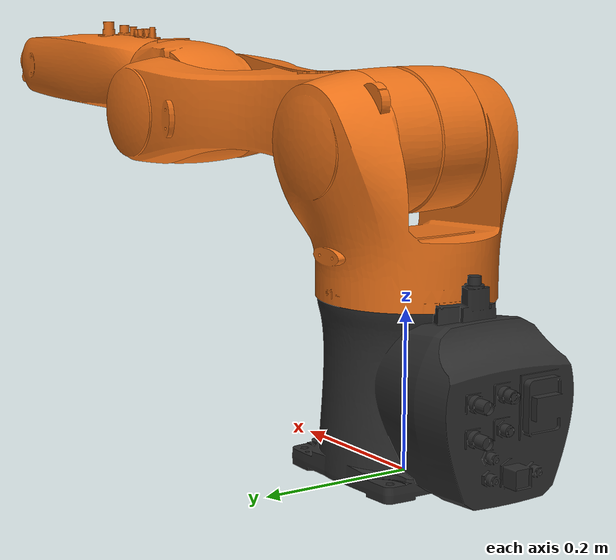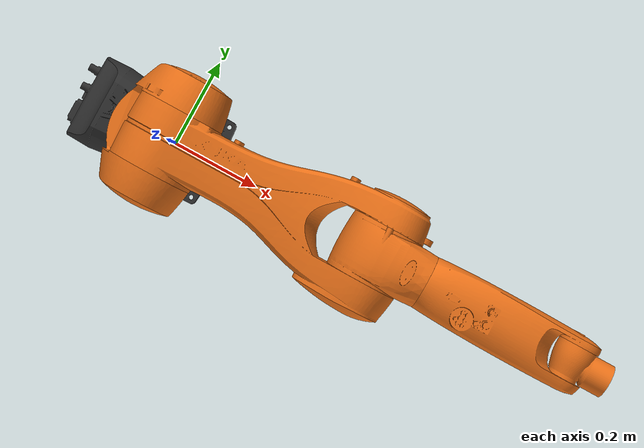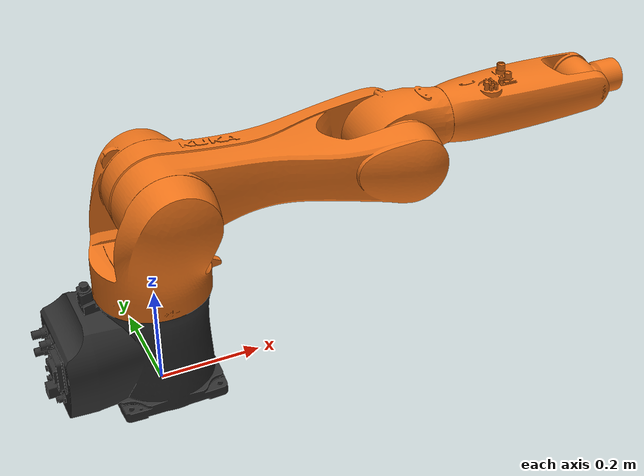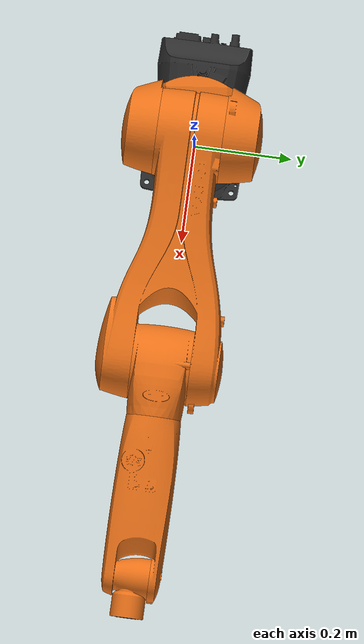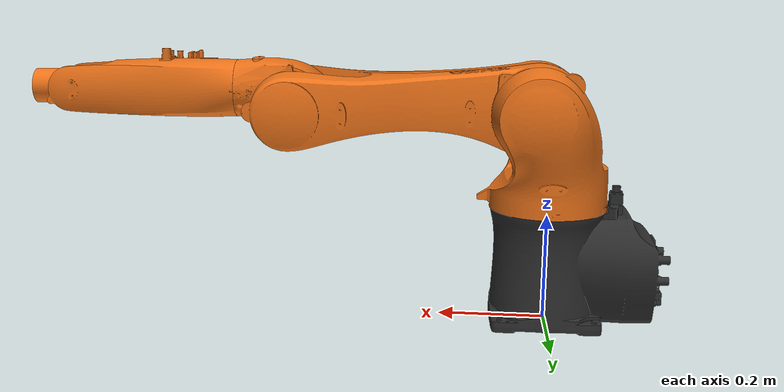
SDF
<?xml version="1.0"?>
<sdf version="1.9">
  <model name="kuka_kr6r900sixx">
    <self_collide>false</self_collide>
    <allow_auto_disable>false</allow_auto_disable>

    <link name="base_link">
      <inertial>
        <pose>-0.0568 0 0.1304 0 0 0</pose>
        <mass>25.0</mass>
        <inertia>
          <ixx>0.32</ixx>
          <iyy>0.32</iyy>
          <izz>0.28</izz>
          <ixy>0.0</ixy>
          <ixz>0.0</ixz>
          <iyz>0.0</iyz>
        </inertia>
      </inertial>
      <visual name="base_link_visual">
        <geometry>
          <mesh>
            <uri>model://kuka_kr6r900sixx/meshes/converted_visual/base_link.stl</uri>
          </mesh>
        </geometry>
        <material>
          <ambient>0.18 0.18 0.18 1</ambient>
          <diffuse>0.18 0.18 0.18 1</diffuse>
        </material>
      </visual>
      <collision name="base_link_collision">
        <geometry>
          <mesh>
            <uri>model://kuka_kr6r900sixx/meshes/kr6_agilus/collision/base_link.stl</uri>
          </mesh>
        </geometry>
      </collision>
    </link>

    <link name="link_1">
      <pose relative_to="joint_a1">0 0 0 0 0 0</pose>
      <inertial>
        <pose>0.0116 -0.0010 -0.0483 0 0 0</pose>
        <mass>8.0</mass>
        <inertia>
          <ixx>0.07</ixx>
          <iyy>0.07</iyy>
          <izz>0.05</izz>
          <ixy>0.0</ixy>
          <ixz>0.0</ixz>
          <iyz>0.0</iyz>
        </inertia>
      </inertial>
      <visual name="link_1_visual">
        <geometry>
          <mesh>
            <uri>model://kuka_kr6r900sixx/meshes/converted_visual/link_1.stl</uri>
          </mesh>
        </geometry>
        <material>
          <ambient>0.93 0.45 0.10 1</ambient>
          <diffuse>0.93 0.45 0.10 1</diffuse>
        </material>
      </visual>
      <collision name="link_1_collision">
        <geometry>
          <mesh>
            <uri>model://kuka_kr6r900sixx/meshes/kr6_agilus/collision/link_1.stl</uri>
          </mesh>
        </geometry>
      </collision>
    </link>

    <link name="link_2">
      <pose relative_to="joint_a2">0 0 0 0 0 0</pose>
      <inertial>
        <pose>0.2277 -0.0050 0.0001 0 0 0</pose>
        <mass>6.0</mass>
        <inertia>
          <ixx>0.04</ixx>
          <iyy>0.04</iyy>
          <izz>0.03</izz>
          <ixy>0.0</ixy>
          <ixz>0.0</ixz>
          <iyz>0.0</iyz>
        </inertia>
      </inertial>
      <visual name="link_2_visual">
        <geometry>
          <mesh>
            <uri>model://kuka_kr6r900sixx/meshes/converted_visual/link_2.stl</uri>
          </mesh>
        </geometry>
        <material>
          <ambient>0.93 0.45 0.10 1</ambient>
          <diffuse>0.93 0.45 0.10 1</diffuse>
        </material>
      </visual>
      <collision name="link_2_collision">
        <geometry>
          <mesh>
            <uri>model://kuka_kr6r900sixx/meshes/kr6r900sixx/collision/link_2.stl</uri>
          </mesh>
        </geometry>
      </collision>
    </link>

    <link name="link_3">
      <pose relative_to="joint_a3">0 0 0 0 0 0</pose>
      <inertial>
        <pose>0.0203 0 0.0080 0 0 0</pose>
        <mass>4.0</mass>
        <inertia>
          <ixx>0.03</ixx>
          <iyy>0.03</iyy>
          <izz>0.02</izz>
          <ixy>0.0</ixy>
          <ixz>0.0</ixz>
          <iyz>0.0</iyz>
        </inertia>
      </inertial>
      <visual name="link_3_visual">
        <geometry>
          <mesh>
            <uri>model://kuka_kr6r900sixx/meshes/converted_visual/link_3.stl</uri>
          </mesh>
        </geometry>
        <material>
          <ambient>0.93 0.45 0.10 1</ambient>
          <diffuse>0.93 0.45 0.10 1</diffuse>
        </material>
      </visual>
      <collision name="link_3_collision">
        <geometry>
          <mesh>
            <uri>model://kuka_kr6r900sixx/meshes/kr6_agilus/collision/link_3.stl</uri>
          </mesh>
        </geometry>
      </collision>
    </link>

    <link name="link_4">
      <pose relative_to="joint_a4">0 0 0 0 0 0</pose>
      <inertial>
        <pose>0.2858 -0.0006 0.0092 0 0 0</pose>
        <mass>2.0</mass>
        <inertia>
          <ixx>0.015</ixx>
          <iyy>0.015</iyy>
          <izz>0.012</izz>
          <ixy>0.0</ixy>
          <ixz>0.0</ixz>
          <iyz>0.0</iyz>
        </inertia>
      </inertial>
      <visual name="link_4_visual">
        <geometry>
          <mesh>
            <uri>model://kuka_kr6r900sixx/meshes/converted_visual/link_4.stl</uri>
          </mesh>
        </geometry>
        <material>
          <ambient>0.93 0.45 0.10 1</ambient>
          <diffuse>0.93 0.45 0.10 1</diffuse>
        </material>
      </visual>
      <collision name="link_4_collision">
        <geometry>
          <mesh>
            <uri>model://kuka_kr6r900sixx/meshes/kr6r900sixx/collision/link_4.stl</uri>
          </mesh>
        </geometry>
      </collision>
    </link>

    <link name="link_5">
      <pose relative_to="joint_a5">0 0 0 0 0 0</pose>
      <inertial>
        <pose>0.0198 -0.0003 0 0 0 0</pose>
        <mass>1.6</mass>
        <inertia>
          <ixx>0.01</ixx>
          <iyy>0.01</iyy>
          <izz>0.008</izz>
          <ixy>0.0</ixy>
          <ixz>0.0</ixz>
          <iyz>0.0</iyz>
        </inertia>
      </inertial>
      <visual name="link_5_visual">
        <geometry>
          <mesh>
            <uri>model://kuka_kr6r900sixx/meshes/converted_visual/link_5.stl</uri>
          </mesh>
        </geometry>
        <material>
          <ambient>0.93 0.45 0.10 1</ambient>
          <diffuse>0.93 0.45 0.10 1</diffuse>
        </material>
      </visual>
      <collision name="link_5_collision">
        <geometry>
          <mesh>
            <uri>model://kuka_kr6r900sixx/meshes/kr6_agilus/collision/link_5.stl</uri>
          </mesh>
        </geometry>
      </collision>
    </link>

    <link name="link_6">
      <pose relative_to="joint_a6">0 0 0 0 0 0</pose>
      <inertial>
        <pose>-0.0068 0 0 0 0 0</pose>
        <mass>1.0</mass>
        <inertia>
          <ixx>0.005</ixx>
          <iyy>0.005</iyy>
          <izz>0.004</izz>
          <ixy>0.0</ixy>
          <ixz>0.0</ixz>
          <iyz>0.0</iyz>
        </inertia>
      </inertial>
      <visual name="link_6_visual">
        <geometry>
          <mesh>
            <uri>model://kuka_kr6r900sixx/meshes/converted_visual/link_6.stl</uri>
          </mesh>
        </geometry>
        <material>
          <ambient>0.18 0.18 0.18 1</ambient>
          <diffuse>0.18 0.18 0.18 1</diffuse>
        </material>
      </visual>
      <collision name="link_6_collision">
        <geometry>
          <mesh>
            <uri>model://kuka_kr6r900sixx/meshes/kr6_agilus/collision/link_6.stl</uri>
          </mesh>
        </geometry>
      </collision>
    </link>

    <link name="flange">
      <pose relative_to="joint_a6_flange">0 0 0 0 0 0</pose>
    </link>
    <link name="base">
      <pose relative_to="base_link_base">0 0 0 0 0 0</pose>
    </link>
    <link name="tool0">
      <pose relative_to="flange_tool0">0 0 0 0 0 0</pose>
    </link>

    <joint name="world_joint" type="fixed">
      <parent>world</parent>
      <child>base_link</child>
    </joint>

    <joint name="joint_a1" type="revolute">
      <parent>base_link</parent>
      <child>link_1</child>
      <pose relative_to="base_link">0 0 0.400 0 0 0</pose>
      <axis>
        <xyz>0 0 -1</xyz>
        <limit>
          <lower>-2.96706</lower>
          <upper>2.96706</upper>
          <effort>800</effort>
          <velocity>6.28319</velocity>
        </limit>
        <dynamics>
          <damping>0.6</damping>
          <friction>0.05</friction>
        </dynamics>
      </axis>
    </joint>

    <joint name="joint_a2" type="revolute">
      <parent>link_1</parent>
      <child>link_2</child>
      <pose relative_to="link_1">0.025 0 0 0 0 0</pose>
      <axis>
        <xyz>0 1 0</xyz>
        <limit>
          <lower>-3.31613</lower>
          <upper>0.7854</upper>
          <effort>900</effort>
          <velocity>5.23599</velocity>
        </limit>
        <dynamics>
          <damping>0.6</damping>
          <friction>0.05</friction>
        </dynamics>
      </axis>
    </joint>

    <joint name="joint_a3" type="revolute">
      <parent>link_2</parent>
      <child>link_3</child>
      <pose relative_to="link_2">0.455 0 0 0 0 0</pose>
      <axis>
        <xyz>0 1 0</xyz>
        <limit>
          <lower>-2.0944</lower>
          <upper>2.72271</upper>
          <effort>300</effort>
          <velocity>6.28319</velocity>
        </limit>
        <dynamics>
          <damping>1.0</damping>
          <friction>0.15</friction>
        </dynamics>
      </axis>
    </joint>

    <joint name="joint_a4" type="revolute">
      <parent>link_3</parent>
      <child>link_4</child>
      <pose relative_to="link_3">0 0 0.035 0 0 0</pose>
      <axis>
        <xyz>-1 0 0</xyz>
        <limit>
          <lower>-3.22886</lower>
          <upper>3.22886</upper>
          <effort>300</effort>
          <velocity>6.6497</velocity>
        </limit>
        <dynamics>
          <damping>0.8</damping>
          <friction>0.12</friction>
        </dynamics>
      </axis>
    </joint>

    <joint name="joint_a5" type="revolute">
      <parent>link_4</parent>
      <child>link_5</child>
      <pose relative_to="link_4">0.420 0 0 0 0 0</pose>
      <axis>
        <xyz>0 1 0</xyz>
        <limit>
          <lower>-2.0944</lower>
          <upper>2.0944</upper>
          <effort>250</effort>
          <velocity>6.77188</velocity>
        </limit>
        <dynamics>
          <damping>0.8</damping>
          <friction>0.10</friction>
        </dynamics>
      </axis>
    </joint>

    <joint name="joint_a6" type="revolute">
      <parent>link_5</parent>
      <child>link_6</child>
      <pose relative_to="link_5">0.080 0 0 0 0 0</pose>
      <axis>
        <xyz>-1 0 0</xyz>
        <limit>
          <lower>-6.10865</lower>
          <upper>6.10865</upper>
          <effort>200</effort>
          <velocity>10.73377</velocity>
        </limit>
        <dynamics>
          <damping>0.6</damping>
          <friction>0.08</friction>
        </dynamics>
      </axis>
    </joint>

    <joint name="joint_a6_flange" type="fixed">
      <parent>link_6</parent>
      <child>flange</child>
      <pose relative_to="link_6">0 0 0 0 0 0</pose>
    </joint>

    <joint name="base_link_base" type="fixed">
      <parent>base_link</parent>
      <child>base</child>
      <pose relative_to="base_link">0 0 0 0 0 0</pose>
    </joint>

    <joint name="flange_tool0" type="fixed">
      <parent>flange</parent>
      <child>tool0</child>
      <pose relative_to="flange">0 0 0 0 1.57079632679 0</pose>
    </joint>

    <plugin
      filename="gz-sim-joint-state-publisher-system"
      name="gz::sim::systems::JointStatePublisher">
      <joint_name>joint_a1</joint_name>
      <joint_name>joint_a2</joint_name>
      <joint_name>joint_a3</joint_name>
      <joint_name>joint_a4</joint_name>
      <joint_name>joint_a5</joint_name>
      <joint_name>joint_a6</joint_name>
    </plugin>

    <plugin
      filename="gz-sim-joint-trajectory-controller-system"
      name="gz::sim::systems::JointTrajectoryController">
      <joint_name>joint_a1</joint_name>
      <initial_position>1.5</initial_position>
      <position_p_gain>180.0</position_p_gain>
      <position_i_gain>0.12</position_i_gain>
      <position_d_gain>28.0</position_d_gain>
      <position_i_min>-2.0</position_i_min>
      <position_i_max>2.0</position_i_max>
      <position_cmd_min>-320.0</position_cmd_min>
      <position_cmd_max>320.0</position_cmd_max>

      <joint_name>joint_a2</joint_name>
      <initial_position>-1.57</initial_position>
      <position_p_gain>240.0</position_p_gain>
      <position_i_gain>0.16</position_i_gain>
      <position_d_gain>36.0</position_d_gain>
      <position_i_min>-2.5</position_i_min>
      <position_i_max>2.5</position_i_max>
      <position_cmd_min>-420.0</position_cmd_min>
      <position_cmd_max>420.0</position_cmd_max>

      <joint_name>joint_a3</joint_name>
      <initial_position>1.57</initial_position>
      <position_p_gain>55.0</position_p_gain>
      <position_i_gain>0.06</position_i_gain>
      <position_d_gain>9.0</position_d_gain>
      <position_i_min>-1.0</position_i_min>
      <position_i_max>1.0</position_i_max>
      <position_cmd_min>-110.0</position_cmd_min>
      <position_cmd_max>110.0</position_cmd_max>

      <joint_name>joint_a4</joint_name>
      <initial_position>0.0</initial_position>
      <position_p_gain>45.0</position_p_gain>
      <position_i_gain>0.05</position_i_gain>
      <position_d_gain>8.0</position_d_gain>
      <position_i_min>-0.8</position_i_min>
      <position_i_max>0.8</position_i_max>
      <position_cmd_min>-90.0</position_cmd_min>
      <position_cmd_max>90.0</position_cmd_max>

      <joint_name>joint_a5</joint_name>
      <initial_position>0.0</initial_position>
      <position_p_gain>35.0</position_p_gain>
      <position_i_gain>0.04</position_i_gain>
      <position_d_gain>6.5</position_d_gain>
      <position_i_min>-0.6</position_i_min>
      <position_i_max>0.6</position_i_max>
      <position_cmd_min>-70.0</position_cmd_min>
      <position_cmd_max>70.0</position_cmd_max>

      <joint_name>joint_a6</joint_name>
      <initial_position>0.0</initial_position>
      <position_p_gain>30.0</position_p_gain>
      <position_i_gain>0.03</position_i_gain>
      <position_d_gain>5.5</position_d_gain>
      <position_i_min>-0.5</position_i_min>
      <position_i_max>0.5</position_i_max>
      <position_cmd_min>-60.0</position_cmd_min>
      <position_cmd_max>60.0</position_cmd_max>
    </plugin>
  </model>
</sdf>
